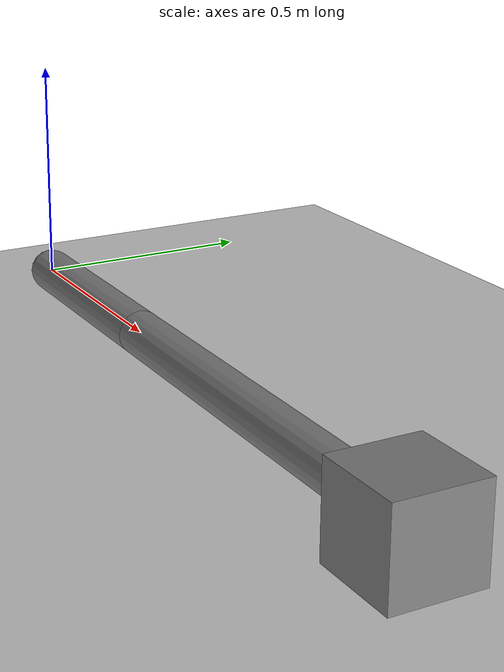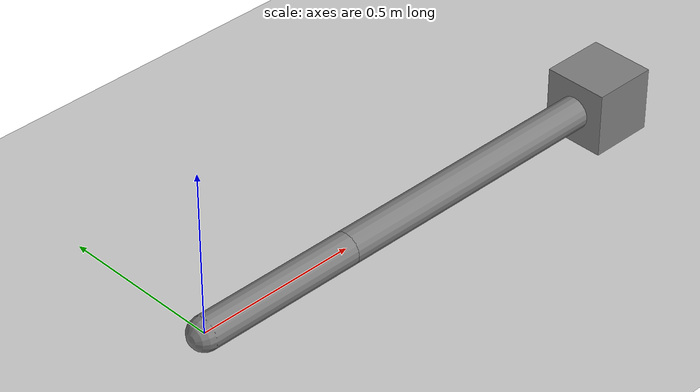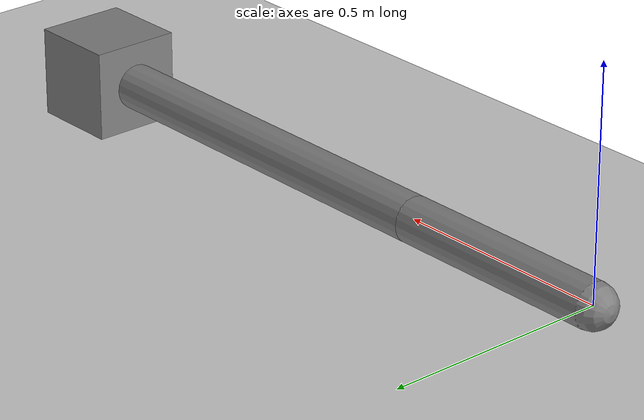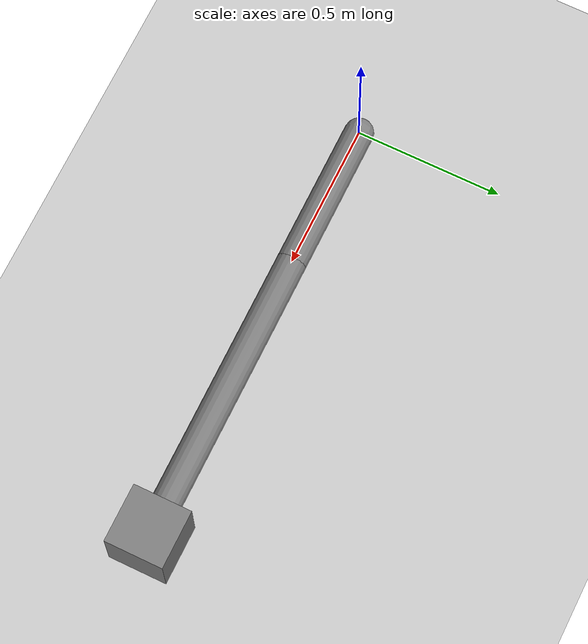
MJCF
<mujoco model="test">
  <option gravity="0 0 -9.81" timestep="0.002" solver="Newton" iterations="100"/>
  <worldbody>
    <geom type="plane" pos="0 0 -0.2" size="5 5 0.1" rgba="0.8 0.8 0.8 1"/>
    <body name="link1" pos="0 0 0 ">
      <joint type="hinge" axis="0 0 1" damping="0.1" name="link1_joint"/>
      <geom type="capsule" fromto="0 0 0 0.5 0 0" mass="10" friction="0.8 0.01 0.001" size="0.05"/>
      <body name="link2" pos="0.5 0 0">
        <joint type="hinge" axis="0 0 1" damping="0.1" name="link2_joint"/>
        <geom type="capsule" fromto="0 0 0 1 0 0" mass="10" friction="0.8 0.01 0.001" size="0.05"/>
        <site name="link2_end" pos="1 0 0" size="0.02"/>
      </body>
    </body>
    <body name="slider" pos="1.5 0 0">
      <joint type="slide" axis="1 0 0" damping="1.0" name="slider_joint"/>
      <geom type="box" size="0.1 0.1 0.1" mass="10" friction="1 0.01 0.001"/>
      <site name="slider_site" pos="0 0 0" size="0.02"/>
    </body>
  </worldbody>
  <equality>
    <connect site1="link2_end" site2="slider_site"/>
  </equality>
  <actuator>
    <motor joint="link1_joint" gear="1" ctrlrange="-5 5"/>
  </actuator>
</mujoco>
